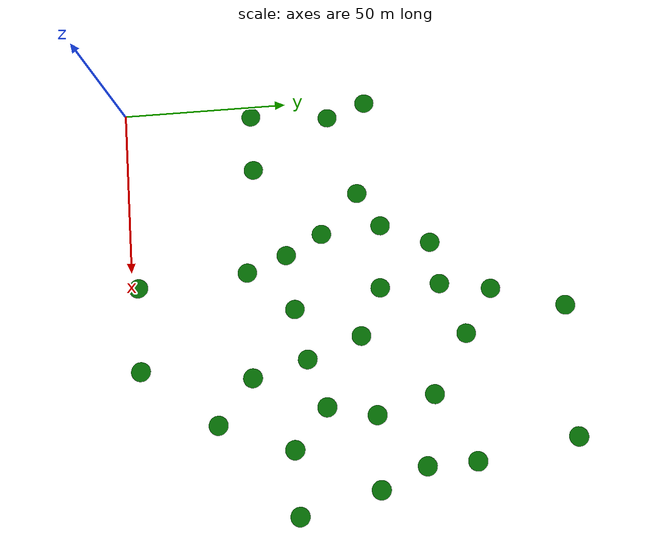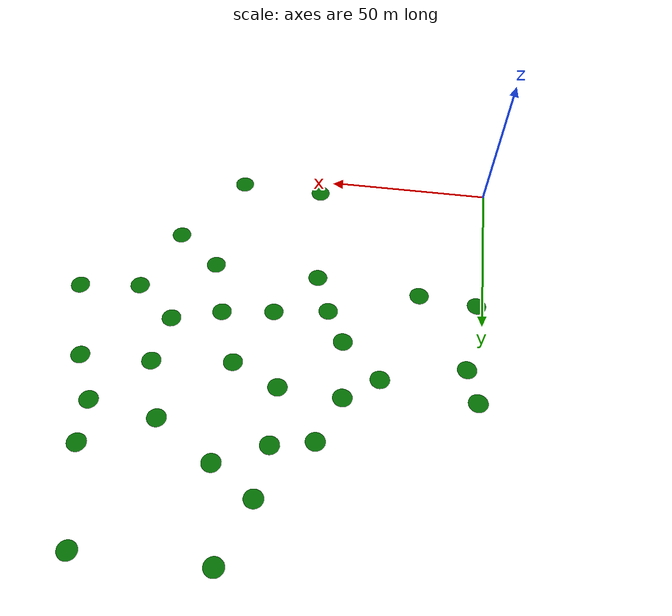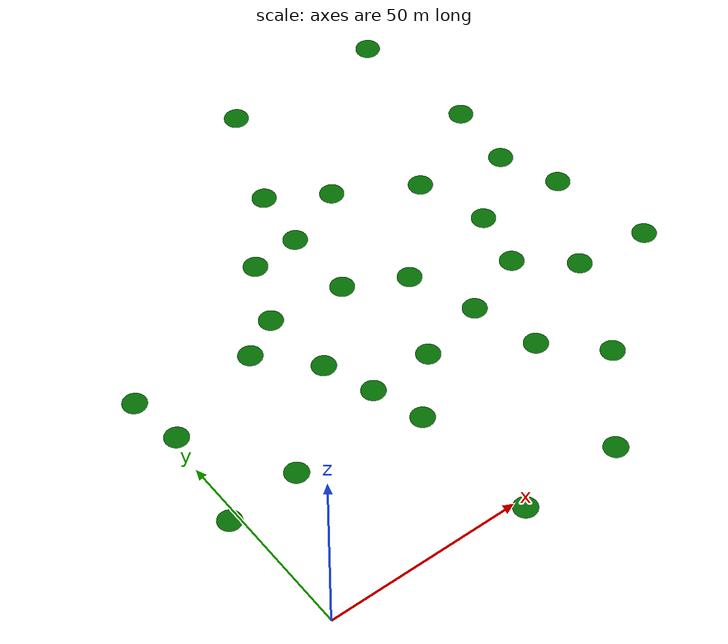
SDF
<sdf version="1.6">
 <world name="default">
  <light name="sun" type="directional">
   <pose>0 0 10 0 -0 0</pose>
   <diffuse>0.8 0.8 0.8 1</diffuse>
   <specular>0.1 0.1 0.1 1</specular>
   <attenuation>
    <range>1000</range>
    <constant>0.9</constant>
    <linear>0.01</linear>
    <quadratic>0.001</quadratic>
   </attenuation>
   <direction>-0.5 0.5 -1</direction>
  </light>
  <gravity>0 0 -9.8</gravity>
  <magnetic_field>6e-06 2.3e-05 -4.2e-05</magnetic_field>
  <atmosphere type="adiabatic"/>
  <physics name="default_physics" default="0" type="ode">
   <max_step_size>0.001</max_step_size>
   <real_time_factor>1</real_time_factor>
   <real_time_update_rate>1000</real_time_update_rate>
  </physics>
  <scene><ambient>0.4 0.4 0.4 1</ambient><background>0.7 0.7 0.7 1</background><shadows>1</shadows></scene>
  <spherical_coordinates>
   <surface_model>EARTH_WGS84</surface_model>
   <latitude_deg>0</latitude_deg>
   <longitude_deg>0</longitude_deg>
   <elevation>0</elevation>
   <heading_deg>0</heading_deg>
  </spherical_coordinates>
  <model name="M16APM_point">
   <link name="link">
    <inertial>
     <mass>1</mass>
     <inertia><ixx>0.145833</ixx><ixy>0</ixy><ixz>0</ixz><iyy>0.145833</iyy><iyz>0</iyz><izz>0.125</izz></inertia>
    </inertial>
    <gravity>0</gravity>
    <visual name="ModelPreview_1::link::visual_1">
     <geometry><cylinder><radius>3</radius><length>0.01</length></cylinder></geometry>
     <material>
      <script><name>Gazebo/Grey</name><uri>file://media/materials/scripts/gazebo.material</uri></script>
      <ambient>0 0.4 0 0</ambient>
      <diffuse>0 0.4 0 0</diffuse>
      <specular>0 0.41 0 0</specular>
      <emissive>0 0.4 0 0</emissive>
      <shader type="vertex"><normal_map>__default__</normal_map></shader>
     </material>
    </visual>
    <visual name="visual">
     <geometry><cylinder><radius>3</radius><length>0.005</length></cylinder></geometry>
     <material>
      <script><name>Gazebo/Grey</name><uri>file://media/materials/scripts/gazebo.material</uri></script>
      <ambient>0 0.4 0 0</ambient>
      <diffuse>0 0.4 0 0</diffuse>
      <specular>0 0.41 0 0</specular>
      <emissive>0 0.4 0 0</emissive>
      <shader type="vertex"><normal_map>__default__</normal_map></shader>
     </material>
    </visual>
   </link>
   <static>0</static>
   <pose>54 0.5 -5.2279 0 -0 0</pose>
  </model>
  <model name="M16APM_point_clone">
   <link name="link">
    <inertial>
     <mass>1</mass>
     <inertia><ixx>0.145833</ixx><ixy>0</ixy><ixz>0</ixz><iyy>0.145833</iyy><iyz>0</iyz><izz>0.125</izz></inertia>
    </inertial>
    <gravity>0</gravity>
    <visual name="ModelPreview_1::link::visual_1">
     <geometry><cylinder><radius>3</radius><length>0.01</length></cylinder></geometry>
     <material>
      <script><name>Gazebo/Grey</name><uri>file://media/materials/scripts/gazebo.material</uri></script>
      <ambient>0 0.4 0 0</ambient>
      <diffuse>0 0.4 0 0</diffuse>
      <specular>0 0.41 0 0</specular>
      <emissive>0 0.4 0 0</emissive>
      <shader type="vertex"><normal_map>__default__</normal_map></shader>
     </material>
    </visual>
    <visual name="visual">
     <geometry><cylinder><radius>3</radius><length>0.005</length></cylinder></geometry>
     <material>
      <script><name>Gazebo/Grey</name><uri>file://media/materials/scripts/gazebo.material</uri></script>
      <ambient>0 0.4 0 0</ambient>
      <diffuse>0 0.4 0 0</diffuse>
      <specular>0 0.41 0 0</specular>
      <emissive>0 0.4 0 0</emissive>
      <shader type="vertex"><normal_map>__default__</normal_map></shader>
     </material>
    </visual>
   </link>
   <static>0</static>
   <pose>0.5 38.5 -6.872 0 -0 0</pose>
  </model>
  <model name="M16APM_point_clone_clone">
   <link name="link">
    <inertial>
     <mass>1</mass>
     <inertia><ixx>0.145833</ixx><ixy>0</ixy><ixz>0</ixz><iyy>0.145833</iyy><iyz>0</iyz><izz>0.125</izz></inertia>
    </inertial>
    <gravity>0</gravity>
    <visual name="ModelPreview_1::link::visual_1">
     <geometry><cylinder><radius>3</radius><length>0.01</length></cylinder></geometry>
     <material>
      <script><name>Gazebo/Grey</name><uri>file://media/materials/scripts/gazebo.material</uri></script>
      <ambient>0 0.4 0 0</ambient>
      <diffuse>0 0.4 0 0</diffuse>
      <specular>0 0.41 0 0</specular>
      <emissive>0 0.4 0 0</emissive>
      <shader type="vertex"><normal_map>__default__</normal_map></shader>
     </material>
    </visual>
    <visual name="visual">
     <geometry><cylinder><radius>3</radius><length>0.005</length></cylinder></geometry>
     <material>
      <script><name>Gazebo/Grey</name><uri>file://media/materials/scripts/gazebo.material</uri></script>
      <ambient>0 0.4 0 0</ambient>
      <diffuse>0 0.4 0 0</diffuse>
      <specular>0 0.41 0 0</specular>
      <emissive>0 0.4 0 0</emissive>
      <shader type="vertex"><normal_map>__default__</normal_map></shader>
     </material>
    </visual>
   </link>
   <static>0</static>
   <pose>19 38.5 -4.354 0 -0 0</pose>
  </model>
  <model name="M16APM_point_clone_clone_clone">
   <link name="link">
    <inertial>
     <mass>1</mass>
     <inertia><ixx>0.145833</ixx><ixy>0</ixy><ixz>0</ixz><iyy>0.145833</iyy><iyz>0</iyz><izz>0.125</izz></inertia>
    </inertial>
    <gravity>0</gravity>
    <visual name="ModelPreview_1::link::visual_1">
     <geometry><cylinder><radius>3</radius><length>0.01</length></cylinder></geometry>
     <material>
      <script><name>Gazebo/Grey</name><uri>file://media/materials/scripts/gazebo.material</uri></script>
      <ambient>0 0.4 0 0</ambient>
      <diffuse>0 0.4 0 0</diffuse>
      <specular>0 0.41 0 0</specular>
      <emissive>0 0.4 0 0</emissive>
      <shader type="vertex"><normal_map>__default__</normal_map></shader>
     </material>
    </visual>
    <visual name="visual">
     <geometry><cylinder><radius>3</radius><length>0.005</length></cylinder></geometry>
     <material>
      <script><name>Gazebo/Grey</name><uri>file://media/materials/scripts/gazebo.material</uri></script>
      <ambient>0 0.4 0 0</ambient>
      <diffuse>0 0.4 0 0</diffuse>
      <specular>0 0.41 0 0</specular>
      <emissive>0 0.4 0 0</emissive>
      <shader type="vertex"><normal_map>__default__</normal_map></shader>
     </material>
    </visual>
   </link>
   <static>0</static>
   <pose>127 46 -6.5373 0 -0 0</pose>
  </model>
  <model name="M16APM_point_clone_0">
   <link name="link">
    <inertial>
     <mass>1</mass>
     <inertia><ixx>0.145833</ixx><ixy>0</ixy><ixz>0</ixz><iyy>0.145833</iyy><iyz>0</iyz><izz>0.125</izz></inertia>
    </inertial>
    <gravity>0</gravity>
    <visual name="ModelPreview_1::link::visual_1">
     <geometry><cylinder><radius>3</radius><length>0.01</length></cylinder></geometry>
     <material>
      <script><name>Gazebo/Grey</name><uri>file://media/materials/scripts/gazebo.material</uri></script>
      <ambient>0 0.4 0 0</ambient>
      <diffuse>0 0.4 0 0</diffuse>
      <specular>0 0.41 0 0</specular>
      <emissive>0 0.4 0 0</emissive>
      <shader type="vertex"><normal_map>__default__</normal_map></shader>
     </material>
    </visual>
    <visual name="visual">
     <geometry><cylinder><radius>3</radius><length>0.005</length></cylinder></geometry>
     <material>
      <script><name>Gazebo/Grey</name><uri>file://media/materials/scripts/gazebo.material</uri></script>
      <ambient>0 0.4 0 0</ambient>
      <diffuse>0 0.4 0 0</diffuse>
      <specular>0 0.41 0 0</specular>
      <emissive>0 0.4 0 0</emissive>
      <shader type="vertex"><normal_map>__default__</normal_map></shader>
     </material>
    </visual>
   </link>
   <static>0</static>
   <pose>0.5 75 -2.1601 0 -0 0</pose>
  </model>
  <model name="M16APM_point_clone_0_clone">
   <link name="link">
    <inertial>
     <mass>1</mass>
     <inertia><ixx>0.145833</ixx><ixy>0</ixy><ixz>0</ixz><iyy>0.145833</iyy><iyz>0</iyz><izz>0.125</izz></inertia>
    </inertial>
    <gravity>0</gravity>
    <visual name="ModelPreview_1::link::visual_1">
     <geometry><cylinder><radius>3</radius><length>0.01</length></cylinder></geometry>
     <material>
      <script><name>Gazebo/Grey</name><uri>file://media/materials/scripts/gazebo.material</uri></script>
      <ambient>0 0.4 0 0</ambient>
      <diffuse>0 0.4 0 0</diffuse>
      <specular>0 0.41 0 0</specular>
      <emissive>0 0.4 0 0</emissive>
      <shader type="vertex"><normal_map>__default__</normal_map></shader>
     </material>
    </visual>
    <visual name="visual">
     <geometry><cylinder><radius>3</radius><length>0.005</length></cylinder></geometry>
     <material>
      <script><name>Gazebo/Grey</name><uri>file://media/materials/scripts/gazebo.material</uri></script>
      <ambient>0 0.4 0 0</ambient>
      <diffuse>0 0.4 0 0</diffuse>
      <specular>0 0.41 0 0</specular>
      <emissive>0 0.4 0 0</emissive>
      <shader type="vertex"><normal_map>__default__</normal_map></shader>
     </material>
    </visual>
   </link>
   <static>0</static>
   <pose>107 46 -3.071 0 -0 0</pose>
  </model>
  <model name="M16APM_point_clone_0_clone_clone">
   <link name="link">
    <inertial>
     <mass>1</mass>
     <inertia><ixx>0.145833</ixx><ixy>0</ixy><ixz>0</ixz><iyy>0.145833</iyy><iyz>0</iyz><izz>0.125</izz></inertia>
    </inertial>
    <gravity>0</gravity>
    <visual name="ModelPreview_1::link::visual_1">
     <geometry><cylinder><radius>3</radius><length>0.01</length></cylinder></geometry>
     <material>
      <script><name>Gazebo/Grey</name><uri>file://media/materials/scripts/gazebo.material</uri></script>
      <ambient>0 0.4 0 0</ambient>
      <diffuse>0 0.4 0 0</diffuse>
      <specular>0 0.41 0 0</specular>
      <emissive>0 0.4 0 0</emissive>
      <shader type="vertex"><normal_map>__default__</normal_map></shader>
     </material>
    </visual>
    <visual name="visual">
     <geometry><cylinder><radius>3</radius><length>0.005</length></cylinder></geometry>
     <material>
      <script><name>Gazebo/Grey</name><uri>file://media/materials/scripts/gazebo.material</uri></script>
      <ambient>0 0.4 0 0</ambient>
      <diffuse>0 0.4 0 0</diffuse>
      <specular>0 0.41 0 0</specular>
      <emissive>0 0.4 0 0</emissive>
      <shader type="vertex"><normal_map>__default__</normal_map></shader>
     </material>
    </visual>
   </link>
   <static>0</static>
   <pose>75.5 101 -6.5057 0 -0 0</pose>
  </model>
  <model name="M16APM_point_clone_0_clone_clone_clone">
   <link name="link">
    <inertial>
     <mass>1</mass>
     <inertia><ixx>0.145833</ixx><ixy>0</ixy><ixz>0</ixz><iyy>0.145833</iyy><iyz>0</iyz><izz>0.125</izz></inertia>
    </inertial>
    <gravity>0</gravity>
    <visual name="ModelPreview_1::link::visual_1">
     <geometry><cylinder><radius>3</radius><length>0.01</length></cylinder></geometry>
     <material>
      <script><name>Gazebo/Grey</name><uri>file://media/materials/scripts/gazebo.material</uri></script>
      <ambient>0 0.4 0 0</ambient>
      <diffuse>0 0.4 0 0</diffuse>
      <specular>0 0.41 0 0</specular>
      <emissive>0 0.4 0 0</emissive>
      <shader type="vertex"><normal_map>__default__</normal_map></shader>
     </material>
    </visual>
    <visual name="visual">
     <geometry><cylinder><radius>3</radius><length>0.005</length></cylinder></geometry>
     <material>
      <script><name>Gazebo/Grey</name><uri>file://media/materials/scripts/gazebo.material</uri></script>
      <ambient>0 0.4 0 0</ambient>
      <diffuse>0 0.4 0 0</diffuse>
      <specular>0 0.41 0 0</specular>
      <emissive>0 0.4 0 0</emissive>
      <shader type="vertex"><normal_map>__default__</normal_map></shader>
     </material>
    </visual>
   </link>
   <static>0</static>
   <pose>64 48.5 -6.6215 0 -0 0</pose>
  </model>
  <model name="M16APM_point_clone_0_clone_clone_clone_clone">
   <link name="link">
    <inertial>
     <mass>1</mass>
     <inertia><ixx>0.145833</ixx><ixy>0</ixy><ixz>0</ixz><iyy>0.145833</iyy><iyz>0</iyz><izz>0.125</izz></inertia>
    </inertial>
    <gravity>0</gravity>
    <visual name="ModelPreview_1::link::visual_1">
     <geometry><cylinder><radius>3</radius><length>0.01</length></cylinder></geometry>
     <material>
      <script><name>Gazebo/Grey</name><uri>file://media/materials/scripts/gazebo.material</uri></script>
      <ambient>0 0.4 0 0</ambient>
      <diffuse>0 0.4 0 0</diffuse>
      <specular>0 0.41 0 0</specular>
      <emissive>0 0.4 0 0</emissive>
      <shader type="vertex"><normal_map>__default__</normal_map></shader>
     </material>
    </visual>
    <visual name="visual">
     <geometry><cylinder><radius>3</radius><length>0.005</length></cylinder></geometry>
     <material>
      <script><name>Gazebo/Grey</name><uri>file://media/materials/scripts/gazebo.material</uri></script>
      <ambient>0 0.4 0 0</ambient>
      <diffuse>0 0.4 0 0</diffuse>
      <specular>0 0.41 0 0</specular>
      <emissive>0 0.4 0 0</emissive>
      <shader type="vertex"><normal_map>__default__</normal_map></shader>
     </material>
    </visual>
   </link>
   <static>0</static>
   <pose>47 47 -5.3339 0 -0 0</pose>
  </model>
  <model name="M16APM_point_clone_0_clone_clone_clone_clone_clone">
   <link name="link">
    <inertial>
     <mass>1</mass>
     <inertia><ixx>0.145833</ixx><ixy>0</ixy><ixz>0</ixz><iyy>0.145833</iyy><iyz>0</iyz><izz>0.125</izz></inertia>
    </inertial>
    <gravity>0</gravity>
    <visual name="ModelPreview_1::link::visual_1">
     <geometry><cylinder><radius>3</radius><length>0.01</length></cylinder></geometry>
     <material>
      <script><name>Gazebo/Grey</name><uri>file://media/materials/scripts/gazebo.material</uri></script>
      <ambient>0 0.4 0 0</ambient>
      <diffuse>0 0.4 0 0</diffuse>
      <specular>0 0.41 0 0</specular>
      <emissive>0 0.4 0 0</emissive>
      <shader type="vertex"><normal_map>__default__</normal_map></shader>
     </material>
    </visual>
    <visual name="visual">
     <geometry><cylinder><radius>3</radius><length>0.005</length></cylinder></geometry>
     <material>
      <script><name>Gazebo/Grey</name><uri>file://media/materials/scripts/gazebo.material</uri></script>
      <ambient>0 0.4 0 0</ambient>
      <diffuse>0 0.4 0 0</diffuse>
      <specular>0 0.41 0 0</specular>
      <emissive>0 0.4 0 0</emissive>
      <shader type="vertex"><normal_map>__default__</normal_map></shader>
     </material>
    </visual>
   </link>
   <static>0</static>
   <pose>84.5 34.5 -4.3199 0 -0 0</pose>
  </model>
  <model name="M16APM_point_clone_0_clone_clone_clone_clone_clone_clone">
   <link name="link">
    <inertial>
     <mass>1</mass>
     <inertia><ixx>0.145833</ixx><ixy>0</ixy><ixz>0</ixz><iyy>0.145833</iyy><iyz>0</iyz><izz>0.125</izz></inertia>
    </inertial>
    <gravity>0</gravity>
    <visual name="ModelPreview_1::link::visual_1">
     <geometry><cylinder><radius>3</radius><length>0.01</length></cylinder></geometry>
     <material>
      <script><name>Gazebo/Grey</name><uri>file://media/materials/scripts/gazebo.material</uri></script>
      <ambient>0 0.4 0 0</ambient>
      <diffuse>0 0.4 0 0</diffuse>
      <specular>0 0.41 0 0</specular>
      <emissive>0 0.4 0 0</emissive>
      <shader type="vertex"><normal_map>__default__</normal_map></shader>
     </material>
    </visual>
    <visual name="visual">
     <geometry><cylinder><radius>3</radius><length>0.005</length></cylinder></geometry>
     <material>
      <script><name>Gazebo/Grey</name><uri>file://media/materials/scripts/gazebo.material</uri></script>
      <ambient>0 0.4 0 0</ambient>
      <diffuse>0 0.4 0 0</diffuse>
      <specular>0 0.41 0 0</specular>
      <emissive>0 0.4 0 0</emissive>
      <shader type="vertex"><normal_map>__default__</normal_map></shader>
     </material>
    </visual>
   </link>
   <static>0</static>
   <pose>59.5 75.5 -5.0091 0 -0 0</pose>
  </model>
  <model name="M16APM_point_clone_0_clone_clone_clone_clone_clone_clone_clone">
   <link name="link">
    <inertial>
     <mass>1</mass>
     <inertia><ixx>0.145833</ixx><ixy>0</ixy><ixz>0</ixz><iyy>0.145833</iyy><iyz>0</iyz><izz>0.125</izz></inertia>
    </inertial>
    <gravity>0</gravity>
    <visual name="ModelPreview_1::link::visual_1">
     <geometry><cylinder><radius>3</radius><length>0.01</length></cylinder></geometry>
     <material>
      <script><name>Gazebo/Grey</name><uri>file://media/materials/scripts/gazebo.material</uri></script>
      <ambient>0 0.4 0 0</ambient>
      <diffuse>0 0.4 0 0</diffuse>
      <specular>0 0.41 0 0</specular>
      <emissive>0 0.4 0 0</emissive>
      <shader type="vertex"><normal_map>__default__</normal_map></shader>
     </material>
    </visual>
    <visual name="visual">
     <geometry><cylinder><radius>3</radius><length>0.005</length></cylinder></geometry>
     <material>
      <script><name>Gazebo/Grey</name><uri>file://media/materials/scripts/gazebo.material</uri></script>
      <ambient>0 0.4 0 0</ambient>
      <diffuse>0 0.4 0 0</diffuse>
      <specular>0 0.41 0 0</specular>
      <emissive>0 0.4 0 0</emissive>
      <shader type="vertex"><normal_map>__default__</normal_map></shader>
     </material>
    </visual>
   </link>
   <static>0</static>
   <pose>121 71 -6.5346 0 -0 0</pose>
  </model>
  <model name="M16APM_point_clone_0_clone_clone_clone_clone_clone_clone_clone_0">
   <link name="link">
    <inertial>
     <mass>1</mass>
     <inertia><ixx>0.145833</ixx><ixy>0</ixy><ixz>0</ixz><iyy>0.145833</iyy><iyz>0</iyz><izz>0.125</izz></inertia>
    </inertial>
    <gravity>0</gravity>
    <visual name="ModelPreview_1::link::visual_1">
     <geometry><cylinder><radius>3</radius><length>0.01</length></cylinder></geometry>
     <material>
      <script><name>Gazebo/Grey</name><uri>file://media/materials/scripts/gazebo.material</uri></script>
      <ambient>0 0.4 0 0</ambient>
      <diffuse>0 0.4 0 0</diffuse>
      <specular>0 0.41 0 0</specular>
      <emissive>0 0.4 0 0</emissive>
      <shader type="vertex"><normal_map>__default__</normal_map></shader>
     </material>
    </visual>
    <visual name="visual">
     <geometry><cylinder><radius>3</radius><length>0.005</length></cylinder></geometry>
     <material>
      <script><name>Gazebo/Grey</name><uri>file://media/materials/scripts/gazebo.material</uri></script>
      <ambient>0 0.4 0 0</ambient>
      <diffuse>0 0.4 0 0</diffuse>
      <specular>0 0.41 0 0</specular>
      <emissive>0 0.4 0 0</emissive>
      <shader type="vertex"><normal_map>__default__</normal_map></shader>
     </material>
    </visual>
   </link>
   <static>0</static>
   <pose>95 56.5 -3.4083 0 -0 0</pose>
  </model>
  <model name="M16APM_point_clone_0_clone_clone_clone_clone_clone_clone_clone_1">
   <link name="link">
    <inertial>
     <mass>1</mass>
     <inertia><ixx>0.145833</ixx><ixy>0</ixy><ixz>0</ixz><iyy>0.145833</iyy><iyz>0</iyz><izz>0.125</izz></inertia>
    </inertial>
    <gravity>0</gravity>
    <visual name="ModelPreview_1::link::visual_1">
     <geometry><cylinder><radius>3</radius><length>0.01</length></cylinder></geometry>
     <material>
      <script><name>Gazebo/Grey</name><uri>file://media/materials/scripts/gazebo.material</uri></script>
      <ambient>0 0.4 0 0</ambient>
      <diffuse>0 0.4 0 0</diffuse>
      <specular>0 0.41 0 0</specular>
      <emissive>0 0.4 0 0</emissive>
      <shader type="vertex"><normal_map>__default__</normal_map></shader>
     </material>
    </visual>
    <visual name="visual">
     <geometry><cylinder><radius>3</radius><length>0.005</length></cylinder></geometry>
     <material>
      <script><name>Gazebo/Grey</name><uri>file://media/materials/scripts/gazebo.material</uri></script>
      <ambient>0 0.4 0 0</ambient>
      <diffuse>0 0.4 0 0</diffuse>
      <specular>0 0.41 0 0</specular>
      <emissive>0 0.4 0 0</emissive>
      <shader type="vertex"><normal_map>__default__</normal_map></shader>
     </material>
    </visual>
   </link>
   <static>0</static>
   <pose>51.5 34.5 -5.9165 0 -0 0</pose>
  </model>
  <model name="M16APM_point_clone_0_clone_clone_clone_clone_clone_clone_clone_2">
   <link name="link">
    <inertial>
     <mass>1</mass>
     <inertia><ixx>0.145833</ixx><ixy>0</ixy><ixz>0</ixz><iyy>0.145833</iyy><iyz>0</iyz><izz>0.125</izz></inertia>
    </inertial>
    <gravity>0</gravity>
    <visual name="ModelPreview_1::link::visual_1">
     <geometry><cylinder><radius>3</radius><length>0.01</length></cylinder></geometry>
     <material>
      <script><name>Gazebo/Grey</name><uri>file://media/materials/scripts/gazebo.material</uri></script>
      <ambient>0 0.4 0 0</ambient>
      <diffuse>0 0.4 0 0</diffuse>
      <specular>0 0.41 0 0</specular>
      <emissive>0 0.4 0 0</emissive>
      <shader type="vertex"><normal_map>__default__</normal_map></shader>
     </material>
    </visual>
    <visual name="visual">
     <geometry><cylinder><radius>3</radius><length>0.005</length></cylinder></geometry>
     <material>
      <script><name>Gazebo/Grey</name><uri>file://media/materials/scripts/gazebo.material</uri></script>
      <ambient>0 0.4 0 0</ambient>
      <diffuse>0 0.4 0 0</diffuse>
      <specular>0 0.41 0 0</specular>
      <emissive>0 0.4 0 0</emissive>
      <shader type="vertex"><normal_map>__default__</normal_map></shader>
     </material>
    </visual>
   </link>
   <static>0</static>
   <pose>109.5 131.5 -3.6218 0 -0 0</pose>
  </model>
  <model name="M16APM_point_clone_0_clone_clone_clone_clone_clone_clone_clone_3">
   <link name="link">
    <inertial>
     <mass>1</mass>
     <inertia><ixx>0.145833</ixx><ixy>0</ixy><ixz>0</ixz><iyy>0.145833</iyy><iyz>0</iyz><izz>0.125</izz></inertia>
    </inertial>
    <gravity>0</gravity>
    <visual name="ModelPreview_1::link::visual_1">
     <geometry><cylinder><radius>3</radius><length>0.01</length></cylinder></geometry>
     <material>
      <script><name>Gazebo/Grey</name><uri>file://media/materials/scripts/gazebo.material</uri></script>
      <ambient>0 0.4 0 0</ambient>
      <diffuse>0 0.4 0 0</diffuse>
      <specular>0 0.41 0 0</specular>
      <emissive>0 0.4 0 0</emissive>
      <shader type="vertex"><normal_map>__default__</normal_map></shader>
     </material>
    </visual>
    <visual name="visual">
     <geometry><cylinder><radius>3</radius><length>0.005</length></cylinder></geometry>
     <material>
      <script><name>Gazebo/Grey</name><uri>file://media/materials/scripts/gazebo.material</uri></script>
      <ambient>0 0.4 0 0</ambient>
      <diffuse>0 0.4 0 0</diffuse>
      <specular>0 0.41 0 0</specular>
      <emissive>0 0.4 0 0</emissive>
      <shader type="vertex"><normal_map>__default__</normal_map></shader>
     </material>
    </visual>
   </link>
   <static>0</static>
   <pose>80 0.5 -4.2466 0 -0 0</pose>
  </model>
  <model name="M16APM_point_clone_0_clone_clone_clone_clone_clone_clone_clone_4">
   <link name="link">
    <inertial>
     <mass>1</mass>
     <inertia><ixx>0.145833</ixx><ixy>0</ixy><ixz>0</ixz><iyy>0.145833</iyy><iyz>0</iyz><izz>0.125</izz></inertia>
    </inertial>
    <gravity>0</gravity>
    <visual name="ModelPreview_1::link::visual_1">
     <geometry><cylinder><radius>3</radius><length>0.01</length></cylinder></geometry>
     <material>
      <script><name>Gazebo/Grey</name><uri>file://media/materials/scripts/gazebo.material</uri></script>
      <ambient>0 0.4 0 0</ambient>
      <diffuse>0 0.4 0 0</diffuse>
      <specular>0 0.41 0 0</specular>
      <emissive>0 0.4 0 0</emissive>
      <shader type="vertex"><normal_map>__default__</normal_map></shader>
     </material>
    </visual>
    <visual name="visual">
     <geometry><cylinder><radius>3</radius><length>0.005</length></cylinder></geometry>
     <material>
      <script><name>Gazebo/Grey</name><uri>file://media/materials/scripts/gazebo.material</uri></script>
      <ambient>0 0.4 0 0</ambient>
      <diffuse>0 0.4 0 0</diffuse>
      <specular>0 0.41 0 0</specular>
      <emissive>0 0.4 0 0</emissive>
      <shader type="vertex"><normal_map>__default__</normal_map></shader>
     </material>
    </visual>
   </link>
   <static>0</static>
   <pose>40 77 -4.2462 0 -0 0</pose>
  </model>
  <model name="M16APM_point_clone_0_clone_clone_clone_clone_clone_clone_clone_5">
   <link name="link">
    <inertial>
     <mass>1</mass>
     <inertia><ixx>0.145833</ixx><ixy>0</ixy><ixz>0</ixz><iyy>0.145833</iyy><iyz>0</iyz><izz>0.125</izz></inertia>
    </inertial>
    <gravity>0</gravity>
    <visual name="ModelPreview_1::link::visual_1">
     <geometry><cylinder><radius>3</radius><length>0.01</length></cylinder></geometry>
     <material>
      <script><name>Gazebo/Grey</name><uri>file://media/materials/scripts/gazebo.material</uri></script>
      <ambient>0 0.4 0 0</ambient>
      <diffuse>0 0.4 0 0</diffuse>
      <specular>0 0.41 0 0</specular>
      <emissive>0 0.4 0 0</emissive>
      <shader type="vertex"><normal_map>__default__</normal_map></shader>
     </material>
    </visual>
    <visual name="visual">
     <geometry><cylinder><radius>3</radius><length>0.005</length></cylinder></geometry>
     <material>
      <script><name>Gazebo/Grey</name><uri>file://media/materials/scripts/gazebo.material</uri></script>
      <ambient>0 0.4 0 0</ambient>
      <diffuse>0 0.4 0 0</diffuse>
      <specular>0 0.41 0 0</specular>
      <emissive>0 0.4 0 0</emissive>
      <shader type="vertex"><normal_map>__default__</normal_map></shader>
     </material>
    </visual>
   </link>
   <static>0</static>
   <pose>29.5 70.5 -2.6969 0 -0 0</pose>
  </model>
  <model name="M16APM_point_clone_0_clone_clone_clone_clone_clone_clone_clone_6">
   <link name="link">
    <inertial>
     <mass>1</mass>
     <inertia><ixx>0.145833</ixx><ixy>0</ixy><ixz>0</ixz><iyy>0.145833</iyy><iyz>0</iyz><izz>0.125</izz></inertia>
    </inertial>
    <gravity>0</gravity>
    <visual name="ModelPreview_1::link::visual_1">
     <geometry><cylinder><radius>3</radius><length>0.01</length></cylinder></geometry>
     <material>
      <script><name>Gazebo/Grey</name><uri>file://media/materials/scripts/gazebo.material</uri></script>
      <ambient>0 0.4 0 0</ambient>
      <diffuse>0 0.4 0 0</diffuse>
      <specular>0 0.41 0 0</specular>
      <emissive>0 0.4 0 0</emissive>
      <shader type="vertex"><normal_map>__default__</normal_map></shader>
     </material>
    </visual>
    <visual name="visual">
     <geometry><cylinder><radius>3</radius><length>0.005</length></cylinder></geometry>
     <material>
      <script><name>Gazebo/Grey</name><uri>file://media/materials/scripts/gazebo.material</uri></script>
      <ambient>0 0.4 0 0</ambient>
      <diffuse>0 0.4 0 0</diffuse>
      <specular>0 0.41 0 0</specular>
      <emissive>0 0.4 0 0</emissive>
      <shader type="vertex"><normal_map>__default__</normal_map></shader>
     </material>
    </visual>
   </link>
   <static>0</static>
   <pose>115 85.5 -6.6985 0 -0 0</pose>
  </model>
  <model name="M16APM_point_clone_0_clone_clone_clone_clone_clone_clone_clone_7">
   <link name="link">
    <inertial>
     <mass>1</mass>
     <inertia><ixx>0.145833</ixx><ixy>0</ixy><ixz>0</ixz><iyy>0.145833</iyy><iyz>0</iyz><izz>0.125</izz></inertia>
    </inertial>
    <gravity>0</gravity>
    <visual name="ModelPreview_1::link::visual_1">
     <geometry><cylinder><radius>3</radius><length>0.01</length></cylinder></geometry>
     <material>
      <script><name>Gazebo/Grey</name><uri>file://media/materials/scripts/gazebo.material</uri></script>
      <ambient>0 0.4 0 0</ambient>
      <diffuse>0 0.4 0 0</diffuse>
      <specular>0 0.41 0 0</specular>
      <emissive>0 0.4 0 0</emissive>
      <shader type="vertex"><normal_map>__default__</normal_map></shader>
     </material>
    </visual>
    <visual name="visual">
     <geometry><cylinder><radius>3</radius><length>0.005</length></cylinder></geometry>
     <material>
      <script><name>Gazebo/Grey</name><uri>file://media/materials/scripts/gazebo.material</uri></script>
      <ambient>0 0.4 0 0</ambient>
      <diffuse>0 0.4 0 0</diffuse>
      <specular>0 0.41 0 0</specular>
      <emissive>0 0.4 0 0</emissive>
      <shader type="vertex"><normal_map>__default__</normal_map></shader>
     </material>
    </visual>
   </link>
   <static>0</static>
   <pose>62 110 -6.8644 0 -0 0</pose>
  </model>
  <model name="M16APM_point_clone_0_clone_clone_clone_clone_clone_clone_clone_8">
   <link name="link">
    <inertial>
     <mass>1</mass>
     <inertia><ixx>0.145833</ixx><ixy>0</ixy><ixz>0</ixz><iyy>0.145833</iyy><iyz>0</iyz><izz>0.125</izz></inertia>
    </inertial>
    <gravity>0</gravity>
    <visual name="ModelPreview_1::link::visual_1">
     <geometry><cylinder><radius>3</radius><length>0.01</length></cylinder></geometry>
     <material>
      <script><name>Gazebo/Grey</name><uri>file://media/materials/scripts/gazebo.material</uri></script>
      <ambient>0 0.4 0 0</ambient>
      <diffuse>0 0.4 0 0</diffuse>
      <specular>0 0.41 0 0</specular>
      <emissive>0 0.4 0 0</emissive>
      <shader type="vertex"><normal_map>__default__</normal_map></shader>
     </material>
    </visual>
    <visual name="visual">
     <geometry><cylinder><radius>3</radius><length>0.005</length></cylinder></geometry>
     <material>
      <script><name>Gazebo/Grey</name><uri>file://media/materials/scripts/gazebo.material</uri></script>
      <ambient>0 0.4 0 0</ambient>
      <diffuse>0 0.4 0 0</diffuse>
      <specular>0 0.41 0 0</specular>
      <emissive>0 0.4 0 0</emissive>
      <shader type="vertex"><normal_map>__default__</normal_map></shader>
     </material>
    </visual>
   </link>
   <static>0</static>
   <pose>80 51.5 -4.8761 0 -0 0</pose>
  </model>
  <model name="M16APM_point_clone_0_clone_clone_clone_clone_clone_clone_clone_9">
   <link name="link">
    <inertial>
     <mass>1</mass>
     <inertia><ixx>0.145833</ixx><ixy>0</ixy><ixz>0</ixz><iyy>0.145833</iyy><iyz>0</iyz><izz>0.125</izz></inertia>
    </inertial>
    <gravity>0</gravity>
    <visual name="ModelPreview_1::link::visual_1">
     <geometry><cylinder><radius>3</radius><length>0.01</length></cylinder></geometry>
     <material>
      <script><name>Gazebo/Grey</name><uri>file://media/materials/scripts/gazebo.material</uri></script>
      <ambient>0 0.4 0 0</ambient>
      <diffuse>0 0.4 0 0</diffuse>
      <specular>0 0.41 0 0</specular>
      <emissive>0 0.4 0 0</emissive>
      <shader type="vertex"><normal_map>__default__</normal_map></shader>
     </material>
    </visual>
    <visual name="visual">
     <geometry><cylinder><radius>3</radius><length>0.005</length></cylinder></geometry>
     <material>
      <script><name>Gazebo/Grey</name><uri>file://media/materials/scripts/gazebo.material</uri></script>
      <ambient>0 0.4 0 0</ambient>
      <diffuse>0 0.4 0 0</diffuse>
      <specular>0 0.41 0 0</specular>
      <emissive>0 0.4 0 0</emissive>
      <shader type="vertex"><normal_map>__default__</normal_map></shader>
     </material>
    </visual>
   </link>
   <static>0</static>
   <pose>59.5 94 -5.4643 0 -0 0</pose>
  </model>
  <model name="M16APM_point_clone_0_clone_clone_clone_clone_clone_clone_clone_10">
   <link name="link">
    <inertial>
     <mass>1</mass>
     <inertia><ixx>0.145833</ixx><ixy>0</ixy><ixz>0</ixz><iyy>0.145833</iyy><iyz>0</iyz><izz>0.125</izz></inertia>
    </inertial>
    <gravity>0</gravity>
    <visual name="ModelPreview_1::link::visual_1">
     <geometry><cylinder><radius>3</radius><length>0.01</length></cylinder></geometry>
     <material>
      <script><name>Gazebo/Grey</name><uri>file://media/materials/scripts/gazebo.material</uri></script>
      <ambient>0 0.4 0 0</ambient>
      <diffuse>0 0.4 0 0</diffuse>
      <specular>0 0.41 0 0</specular>
      <emissive>0 0.4 0 0</emissive>
      <shader type="vertex"><normal_map>__default__</normal_map></shader>
     </material>
    </visual>
    <visual name="visual">
     <geometry><cylinder><radius>3</radius><length>0.005</length></cylinder></geometry>
     <material>
      <script><name>Gazebo/Grey</name><uri>file://media/materials/scripts/gazebo.material</uri></script>
      <ambient>0 0.4 0 0</ambient>
      <diffuse>0 0.4 0 0</diffuse>
      <specular>0 0.41 0 0</specular>
      <emissive>0 0.4 0 0</emissive>
      <shader type="vertex"><normal_map>__default__</normal_map></shader>
     </material>
    </visual>
   </link>
   <static>0</static>
   <pose>114.5 100.5 -3.8655 0 -0 0</pose>
  </model>
  <model name="M16APM_point_clone_0_clone_clone_clone_clone_clone_clone_clone_11">
   <link name="link">
    <inertial>
     <mass>1</mass>
     <inertia><ixx>0.145833</ixx><ixy>0</ixy><ixz>0</ixz><iyy>0.145833</iyy><iyz>0</iyz><izz>0.125</izz></inertia>
    </inertial>
    <gravity>0</gravity>
    <visual name="ModelPreview_1::link::visual_1">
     <geometry><cylinder><radius>3</radius><length>0.01</length></cylinder></geometry>
     <material>
      <script><name>Gazebo/Grey</name><uri>file://media/materials/scripts/gazebo.material</uri></script>
      <ambient>0 0.4 0 0</ambient>
      <diffuse>0 0.4 0 0</diffuse>
      <specular>0 0.41 0 0</specular>
      <emissive>0 0.4 0 0</emissive>
      <shader type="vertex"><normal_map>__default__</normal_map></shader>
     </material>
    </visual>
    <visual name="visual">
     <geometry><cylinder><radius>3</radius><length>0.005</length></cylinder></geometry>
     <material>
      <script><name>Gazebo/Grey</name><uri>file://media/materials/scripts/gazebo.material</uri></script>
      <ambient>0 0.4 0 0</ambient>
      <diffuse>0 0.4 0 0</diffuse>
      <specular>0 0.41 0 0</specular>
      <emissive>0 0.4 0 0</emissive>
      <shader type="vertex"><normal_map>__default__</normal_map></shader>
     </material>
    </visual>
   </link>
   <static>0</static>
   <pose>46.5 92 -3.9289 0 -0 0</pose>
  </model>
  <model name="M16APM_point_clone_0_clone_clone_clone_clone_clone_clone_clone_12">
   <link name="link">
    <inertial>
     <mass>1</mass>
     <inertia><ixx>0.145833</ixx><ixy>0</ixy><ixz>0</ixz><iyy>0.145833</iyy><iyz>0</iyz><izz>0.125</izz></inertia>
    </inertial>
    <gravity>0</gravity>
    <visual name="ModelPreview_1::link::visual_1">
     <geometry><cylinder><radius>3</radius><length>0.01</length></cylinder></geometry>
     <material>
      <script><name>Gazebo/Grey</name><uri>file://media/materials/scripts/gazebo.material</uri></script>
      <ambient>0 0.4 0 0</ambient>
      <diffuse>0 0.4 0 0</diffuse>
      <specular>0 0.41 0 0</specular>
      <emissive>0 0.4 0 0</emissive>
      <shader type="vertex"><normal_map>__default__</normal_map></shader>
     </material>
    </visual>
    <visual name="visual">
     <geometry><cylinder><radius>3</radius><length>0.005</length></cylinder></geometry>
     <material>
      <script><name>Gazebo/Grey</name><uri>file://media/materials/scripts/gazebo.material</uri></script>
      <ambient>0 0.4 0 0</ambient>
      <diffuse>0 0.4 0 0</diffuse>
      <specular>0 0.41 0 0</specular>
      <emissive>0 0.4 0 0</emissive>
      <shader type="vertex"><normal_map>__default__</normal_map></shader>
     </material>
    </visual>
   </link>
   <static>0</static>
   <pose>69.5 131.5 -2.3544 0 -0 0</pose>
  </model>
  <model name="M16APM_point_clone_0_clone_clone_clone_clone_clone_clone_clone_13">
   <link name="link">
    <inertial>
     <mass>1</mass>
     <inertia><ixx>0.145833</ixx><ixy>0</ixy><ixz>0</ixz><iyy>0.145833</iyy><iyz>0</iyz><izz>0.125</izz></inertia>
    </inertial>
    <gravity>0</gravity>
    <visual name="ModelPreview_1::link::visual_1">
     <geometry><cylinder><radius>3</radius><length>0.01</length></cylinder></geometry>
     <material>
      <script><name>Gazebo/Grey</name><uri>file://media/materials/scripts/gazebo.material</uri></script>
      <ambient>0 0.4 0 0</ambient>
      <diffuse>0 0.4 0 0</diffuse>
      <specular>0 0.41 0 0</specular>
      <emissive>0 0.4 0 0</emissive>
      <shader type="vertex"><normal_map>__default__</normal_map></shader>
     </material>
    </visual>
    <visual name="visual">
     <geometry><cylinder><radius>3</radius><length>0.005</length></cylinder></geometry>
     <material>
      <script><name>Gazebo/Grey</name><uri>file://media/materials/scripts/gazebo.material</uri></script>
      <ambient>0 0.4 0 0</ambient>
      <diffuse>0 0.4 0 0</diffuse>
      <specular>0 0.41 0 0</specular>
      <emissive>0 0.4 0 0</emissive>
      <shader type="vertex"><normal_map>__default__</normal_map></shader>
     </material>
    </visual>
   </link>
   <static>0</static>
   <pose>98.5 71.5 -4.4556 0 -0 0</pose>
  </model>
  <model name="M16APM_point_clone_0_clone_clone_clone_clone_clone_clone_clone_14">
   <link name="link">
    <inertial>
     <mass>1</mass>
     <inertia><ixx>0.145833</ixx><ixy>0</ixy><ixz>0</ixz><iyy>0.145833</iyy><iyz>0</iyz><izz>0.125</izz></inertia>
    </inertial>
    <gravity>0</gravity>
    <visual name="ModelPreview_1::link::visual_1">
     <geometry><cylinder><radius>3</radius><length>0.01</length></cylinder></geometry>
     <material>
      <script><name>Gazebo/Grey</name><uri>file://media/materials/scripts/gazebo.material</uri></script>
      <ambient>0 0.4 0 0</ambient>
      <diffuse>0 0.4 0 0</diffuse>
      <specular>0 0.41 0 0</specular>
      <emissive>0 0.4 0 0</emissive>
      <shader type="vertex"><normal_map>__default__</normal_map></shader>
     </material>
    </visual>
    <visual name="visual">
     <geometry><cylinder><radius>3</radius><length>0.005</length></cylinder></geometry>
     <material>
      <script><name>Gazebo/Grey</name><uri>file://media/materials/scripts/gazebo.material</uri></script>
      <ambient>0 0.4 0 0</ambient>
      <diffuse>0 0.4 0 0</diffuse>
      <specular>0 0.41 0 0</specular>
      <emissive>0 0.4 0 0</emissive>
      <shader type="vertex"><normal_map>__default__</normal_map></shader>
     </material>
    </visual>
   </link>
   <static>0</static>
   <pose>93.5 89.5 -5.3812 0 -0 0</pose>
  </model>
  <model name="M16APM_point_clone_0_clone_clone_clone_clone_clone_clone_clone_15">
   <link name="link">
    <inertial>
     <mass>1</mass>
     <inertia><ixx>0.145833</ixx><ixy>0</ixy><ixz>0</ixz><iyy>0.145833</iyy><iyz>0</iyz><izz>0.125</izz></inertia>
    </inertial>
    <gravity>0</gravity>
    <visual name="ModelPreview_1::link::visual_1">
     <geometry><cylinder><radius>3</radius><length>0.01</length></cylinder></geometry>
     <material>
      <script><name>Gazebo/Grey</name><uri>file://media/materials/scripts/gazebo.material</uri></script>
      <ambient>0 0.4 0 0</ambient>
      <diffuse>0 0.4 0 0</diffuse>
      <specular>0 0.41 0 0</specular>
      <emissive>0 0.4 0 0</emissive>
      <shader type="vertex"><normal_map>__default__</normal_map></shader>
     </material>
    </visual>
    <visual name="visual">
     <geometry><cylinder><radius>3</radius><length>0.005</length></cylinder></geometry>
     <material>
      <script><name>Gazebo/Grey</name><uri>file://media/materials/scripts/gazebo.material</uri></script>
      <ambient>0 0.4 0 0</ambient>
      <diffuse>0 0.4 0 0</diffuse>
      <specular>0 0.41 0 0</specular>
      <emissive>0 0.4 0 0</emissive>
      <shader type="vertex"><normal_map>__default__</normal_map></shader>
     </material>
    </visual>
   </link>
   <static>0</static>
   <pose>74 68.5 -5.4048 0 -0 0</pose>
  </model>
  <model name="M16APM_point_clone_0_clone_clone_clone_clone_clone_clone_clone_16">
   <link name="link">
    <inertial>
     <mass>1</mass>
     <inertia><ixx>0.145833</ixx><ixy>0</ixy><ixz>0</ixz><iyy>0.145833</iyy><iyz>0</iyz><izz>0.125</izz></inertia>
    </inertial>
    <gravity>0</gravity>
    <visual name="ModelPreview_1::link::visual_1">
     <geometry><cylinder><radius>3</radius><length>0.01</length></cylinder></geometry>
     <material>
      <script><name>Gazebo/Grey</name><uri>file://media/materials/scripts/gazebo.material</uri></script>
      <ambient>0 0.4 0 0</ambient>
      <diffuse>0 0.4 0 0</diffuse>
      <specular>0 0.41 0 0</specular>
      <emissive>0 0.4 0 0</emissive>
      <shader type="vertex"><normal_map>__default__</normal_map></shader>
     </material>
    </visual>
    <visual name="visual">
     <geometry><cylinder><radius>3</radius><length>0.005</length></cylinder></geometry>
     <material>
      <script><name>Gazebo/Grey</name><uri>file://media/materials/scripts/gazebo.material</uri></script>
      <ambient>0 0.4 0 0</ambient>
      <diffuse>0 0.4 0 0</diffuse>
      <specular>0 0.41 0 0</specular>
      <emissive>0 0.4 0 0</emissive>
      <shader type="vertex"><normal_map>__default__</normal_map></shader>
     </material>
    </visual>
   </link>
   <static>0</static>
   <pose>3.5 63 -4.6472 0 -0 0</pose>
  </model>
  <model name="M16APM_point_clone_0_clone_clone_clone_clone_clone_clone_clone_17">
   <link name="link">
    <inertial>
     <mass>1</mass>
     <inertia><ixx>0.145833</ixx><ixy>0</ixy><ixz>0</ixz><iyy>0.145833</iyy><iyz>0</iyz><izz>0.125</izz></inertia>
    </inertial>
    <gravity>0</gravity>
    <visual name="ModelPreview_1::link::visual_1">
     <geometry><cylinder><radius>3</radius><length>0.01</length></cylinder></geometry>
     <material>
      <script><name>Gazebo/Grey</name><uri>file://media/materials/scripts/gazebo.material</uri></script>
      <ambient>0 0.4 0 0</ambient>
      <diffuse>0 0.4 0 0</diffuse>
      <specular>0 0.41 0 0</specular>
      <emissive>0 0.4 0 0</emissive>
      <shader type="vertex"><normal_map>__default__</normal_map></shader>
     </material>
    </visual>
    <visual name="visual">
     <geometry><cylinder><radius>3</radius><length>0.005</length></cylinder></geometry>
     <material>
      <script><name>Gazebo/Grey</name><uri>file://media/materials/scripts/gazebo.material</uri></script>
      <ambient>0 0.4 0 0</ambient>
      <diffuse>0 0.4 0 0</diffuse>
      <specular>0 0.41 0 0</specular>
      <emissive>0 0.4 0 0</emissive>
      <shader type="vertex"><normal_map>__default__</normal_map></shader>
     </material>
    </visual>
   </link>
   <static>0</static>
   <pose>41.5 58.5 -3.5484 0 -0 0</pose>
  </model>
  <model name="M16APM_point_clone_0_clone_clone_clone_clone_clone_clone_clone_18">
   <link name="link">
    <inertial>
     <mass>1</mass>
     <inertia><ixx>0.145833</ixx><ixy>0</ixy><ixz>0</ixz><iyy>0.145833</iyy><iyz>0</iyz><izz>0.125</izz></inertia>
    </inertial>
    <gravity>0</gravity>
    <visual name="ModelPreview_1::link::visual_1">
     <geometry><cylinder><radius>3</radius><length>0.01</length></cylinder></geometry>
     <material>
      <script><name>Gazebo/Grey</name><uri>file://media/materials/scripts/gazebo.material</uri></script>
      <ambient>0 0.4 0 0</ambient>
      <diffuse>0 0.4 0 0</diffuse>
      <specular>0 0.41 0 0</specular>
      <emissive>0 0.4 0 0</emissive>
      <shader type="vertex"><normal_map>__default__</normal_map></shader>
     </material>
    </visual>
    <visual name="visual">
     <geometry><cylinder><radius>3</radius><length>0.005</length></cylinder></geometry>
     <material>
      <script><name>Gazebo/Grey</name><uri>file://media/materials/scripts/gazebo.material</uri></script>
      <ambient>0 0.4 0 0</ambient>
      <diffuse>0 0.4 0 0</diffuse>
      <specular>0 0.41 0 0</specular>
      <emissive>0 0.4 0 0</emissive>
      <shader type="vertex"><normal_map>__default__</normal_map></shader>
     </material>
    </visual>
   </link>
   <static>0</static>
   <pose>98 23 -5.8903 0 -0 0</pose>
  </model>
 </world>
</sdf>
